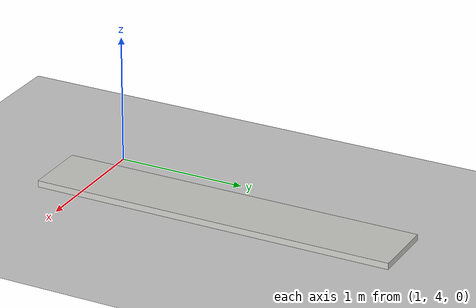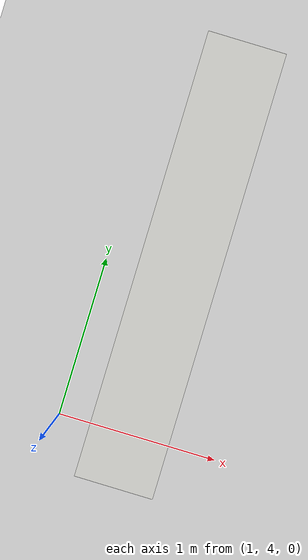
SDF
<sdf version="1.7">
 <world name="default">
  <model name="ground_plane">
   <static>1</static>
   <link name="link">
    <collision name="collision">
     <geometry><plane><normal>0 0 1</normal><size>100 100</size></plane></geometry>
     <surface><friction><ode><mu>100</mu><mu2>50</mu2></ode></friction></surface>
    </collision>
    <visual name="visual">
     <cast_shadows>0</cast_shadows>
     <geometry><plane><normal>0 0 1</normal><size>100 100</size></plane></geometry>
     <material>
      <script><uri>file://media/materials/scripts/gazebo.material</uri><name>Gazebo/Grey</name></script>
     </material>
    </visual>
   </link>
   <pose>-9.56672 -8.6074 0 0 -0 0</pose>
  </model>
  <model name="Bbang">
   <pose>0.80818 3.5119 0 0 -0 0</pose>
   <link name="Wall_23">
    <collision name="Wall_23_Collision">
     <geometry><box><size>2.85 0.5 0.05</size></box></geometry>
     <pose>0 0 0.025 0 -0 0</pose>
    </collision>
    <visual name="Wall_23_Visual">
     <pose>0 0 0.025 0 -0 0</pose>
     <geometry><box><size>2.85 0.5 0.05</size></box></geometry>
     <material>
      <script><uri>file://media/materials/scripts/gazebo.material</uri><name>Gazebo/CeilingTiled</name></script>
      <ambient>1 1 1 1</ambient>
     </material>
     <meta><layer>0</layer></meta>
    </visual>
    <pose>0.6415 1.5825 0 0 -0 1.5708</pose>
   </link>
   <static>1</static>
  </model>
 </world>
</sdf>
